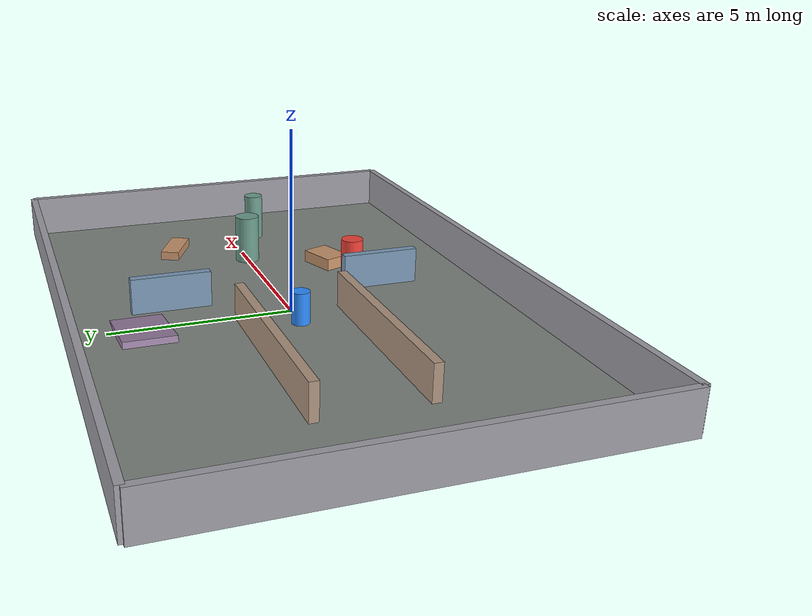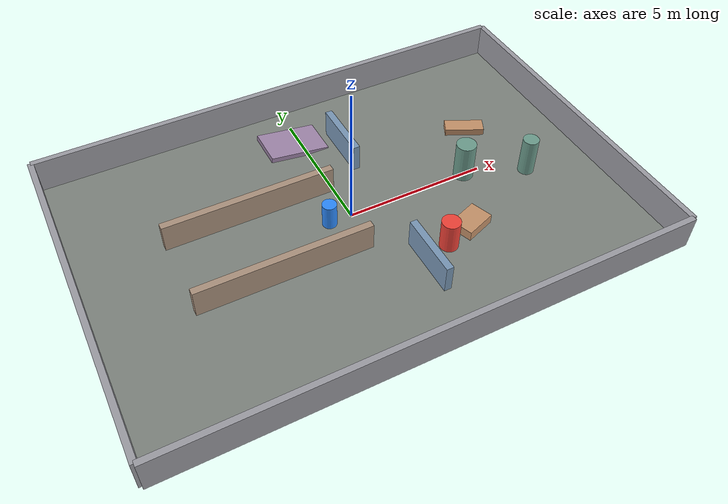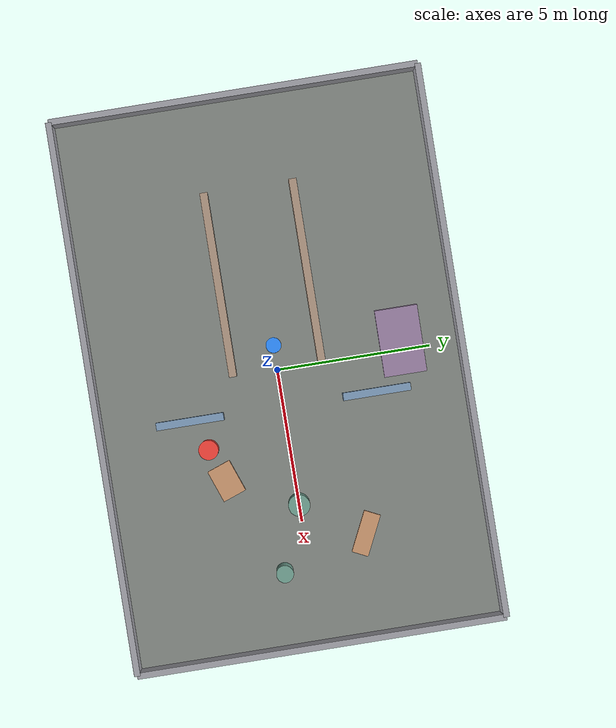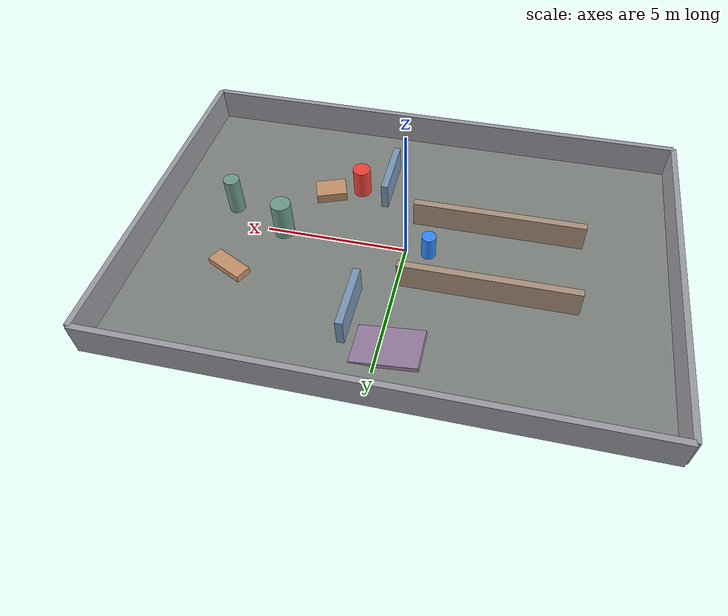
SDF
<?xml version="1.0"?>
<sdf version="1.7">
  <world name="default">
    <light name="sun" type="directional">
      <cast_shadows>true</cast_shadows>
      <pose>0 0 20 0 0 0</pose>
      <diffuse>0.85 0.85 0.85 1</diffuse>
      <specular>0.2 0.2 0.2 1</specular>
      <attenuation>
        <range>100</range>
        <constant>1</constant>
        <linear>0</linear>
        <quadratic>0</quadratic>
      </attenuation>
      <direction>-0.3 0.2 -0.9</direction>
    </light>

    <physics name="default_physics" default="0" type="ode">
      <max_step_size>0.001</max_step_size>
      <real_time_factor>1</real_time_factor>
      <real_time_update_rate>1000</real_time_update_rate>
    </physics>

    <scene>
      <ambient>0.45 0.45 0.45 1</ambient>
      <background>0.72 0.74 0.76 1</background>
      <shadows>true</shadows>
    </scene>

    <gui fullscreen="0">
      <camera name="user_camera">
        <pose>0 -15 11 0 0.62 1.5708</pose>
        <view_controller>orbit</view_controller>
        <projection_type>perspective</projection_type>
      </camera>
    </gui>

    <gravity>0 0 -9.81</gravity>
    <magnetic_field>0 0 0</magnetic_field>
    <atmosphere type="adiabatic"/>

    <model name="nav_test_floor">
      <static>true</static>
      <link name="link">
        <collision name="collision">
          <geometry>
            <box>
              <size>18 12 0.04</size>
            </box>
          </geometry>
          <surface>
            <friction>
              <ode>
                <mu>100</mu>
                <mu2>50</mu2>
              </ode>
            </friction>
          </surface>
        </collision>
        <visual name="visual">
          <geometry>
            <box>
              <size>18 12 0.04</size>
            </box>
          </geometry>
          <material>
            <ambient>0.42 0.43 0.42 1</ambient>
            <diffuse>0.50 0.52 0.50 1</diffuse>
          </material>
        </visual>
      </link>
      <pose>0 0 -0.02 0 0 0</pose>
    </model>

    <model name="wall_north">
      <static>true</static>
      <link name="link">
        <collision name="collision"><geometry><box><size>18 0.2 1.2</size></box></geometry></collision>
        <visual name="visual"><geometry><box><size>18 0.2 1.2</size></box></geometry><material><ambient>0.48 0.48 0.50 1</ambient><diffuse>0.62 0.62 0.65 1</diffuse></material></visual>
      </link>
      <pose>0 6 0.6 0 0 0</pose>
    </model>

    <model name="wall_south">
      <static>true</static>
      <link name="link">
        <collision name="collision"><geometry><box><size>18 0.2 1.2</size></box></geometry></collision>
        <visual name="visual"><geometry><box><size>18 0.2 1.2</size></box></geometry><material><ambient>0.48 0.48 0.50 1</ambient><diffuse>0.62 0.62 0.65 1</diffuse></material></visual>
      </link>
      <pose>0 -6 0.6 0 0 0</pose>
    </model>

    <model name="wall_west">
      <static>true</static>
      <link name="link">
        <collision name="collision"><geometry><box><size>0.2 12 1.2</size></box></geometry></collision>
        <visual name="visual"><geometry><box><size>0.2 12 1.2</size></box></geometry><material><ambient>0.48 0.48 0.50 1</ambient><diffuse>0.62 0.62 0.65 1</diffuse></material></visual>
      </link>
      <pose>-9 0 0.6 0 0 0</pose>
    </model>

    <model name="wall_east">
      <static>true</static>
      <link name="link">
        <collision name="collision"><geometry><box><size>0.2 12 1.2</size></box></geometry></collision>
        <visual name="visual"><geometry><box><size>0.2 12 1.2</size></box></geometry><material><ambient>0.48 0.48 0.50 1</ambient><diffuse>0.62 0.62 0.65 1</diffuse></material></visual>
      </link>
      <pose>9 0 0.6 0 0 0</pose>
    </model>

    <model name="corridor_wall_left">
      <static>true</static>
      <link name="link">
        <collision name="collision"><geometry><box><size>6.0 0.25 1.0</size></box></geometry></collision>
        <visual name="visual"><geometry><box><size>6.0 0.25 1.0</size></box></geometry><material><ambient>0.50 0.44 0.38 1</ambient><diffuse>0.68 0.58 0.50 1</diffuse></material></visual>
      </link>
      <pose>-3.0 -1.45 0.5 0 0 0</pose>
    </model>

    <model name="corridor_wall_right">
      <static>true</static>
      <link name="link">
        <collision name="collision"><geometry><box><size>6.0 0.25 1.0</size></box></geometry></collision>
        <visual name="visual"><geometry><box><size>6.0 0.25 1.0</size></box></geometry><material><ambient>0.50 0.44 0.38 1</ambient><diffuse>0.68 0.58 0.50 1</diffuse></material></visual>
      </link>
      <pose>-3.0 1.45 0.5 0 0 0</pose>
    </model>

    <model name="narrow_gate_top">
      <static>true</static>
      <link name="link">
        <collision name="collision"><geometry><box><size>0.25 2.2 1.0</size></box></geometry></collision>
        <visual name="visual"><geometry><box><size>0.25 2.2 1.0</size></box></geometry><material><ambient>0.38 0.46 0.55 1</ambient><diffuse>0.48 0.60 0.72 1</diffuse></material></visual>
      </link>
      <pose>1.2 3.05 0.5 0 0 0</pose>
    </model>

    <model name="narrow_gate_bottom">
      <static>true</static>
      <link name="link">
        <collision name="collision"><geometry><box><size>0.25 2.2 1.0</size></box></geometry></collision>
        <visual name="visual"><geometry><box><size>0.25 2.2 1.0</size></box></geometry><material><ambient>0.38 0.46 0.55 1</ambient><diffuse>0.48 0.60 0.72 1</diffuse></material></visual>
      </link>
      <pose>1.2 -3.05 0.5 0 0 0</pose>
    </model>

    <model name="low_obstacle_1">
      <static>true</static>
      <link name="link">
        <collision name="collision"><geometry><box><size>1.1 0.8 0.35</size></box></geometry></collision>
        <visual name="visual"><geometry><box><size>1.1 0.8 0.35</size></box></geometry><material><ambient>0.56 0.43 0.32 1</ambient><diffuse>0.78 0.58 0.42 1</diffuse></material></visual>
      </link>
      <pose>3.3 -2.2 0.175 0 0 0.35</pose>
    </model>

    <model name="low_obstacle_2">
      <static>true</static>
      <link name="link">
        <collision name="collision"><geometry><box><size>1.4 0.55 0.25</size></box></geometry></collision>
        <visual name="visual"><geometry><box><size>1.4 0.55 0.25</size></box></geometry><material><ambient>0.56 0.43 0.32 1</ambient><diffuse>0.78 0.58 0.42 1</diffuse></material></visual>
      </link>
      <pose>5.7 2.0 0.125 0 0 -0.45</pose>
    </model>

    <model name="column_1">
      <static>true</static>
      <link name="link">
        <collision name="collision"><geometry><cylinder><radius>0.35</radius><length>1.4</length></cylinder></geometry></collision>
        <visual name="visual"><geometry><cylinder><radius>0.35</radius><length>1.4</length></cylinder></geometry><material><ambient>0.34 0.45 0.42 1</ambient><diffuse>0.43 0.62 0.56 1</diffuse></material></visual>
      </link>
      <pose>4.4 0.0 0.7 0 0 0</pose>
    </model>

    <model name="column_2">
      <static>true</static>
      <link name="link">
        <collision name="collision"><geometry><cylinder><radius>0.28</radius><length>1.4</length></cylinder></geometry></collision>
        <visual name="visual"><geometry><cylinder><radius>0.28</radius><length>1.4</length></cylinder></geometry><material><ambient>0.34 0.45 0.42 1</ambient><diffuse>0.43 0.62 0.56 1</diffuse></material></visual>
      </link>
      <pose>6.5 -0.8 0.7 0 0 0</pose>
    </model>

    <model name="ramp">
      <static>true</static>
      <link name="link">
        <collision name="collision"><geometry><box><size>2.2 1.4 0.18</size></box></geometry></collision>
        <visual name="visual"><geometry><box><size>2.2 1.4 0.18</size></box></geometry><material><ambient>0.45 0.39 0.47 1</ambient><diffuse>0.62 0.52 0.66 1</diffuse></material></visual>
      </link>
      <pose>-0.3 4.1 0.11 0 0.14 0</pose>
    </model>

    <model name="moving_obstacle">
      <static>false</static>
      <pose>2.2 -2.6 0.55 0 0 1.5708</pose>
      <link name="link">
        <gravity>false</gravity>
        <kinematic>true</kinematic>
        <collision name="collision">
          <geometry>
            <cylinder>
              <radius>0.32</radius>
              <length>1.1</length>
            </cylinder>
          </geometry>
          <surface>
            <friction>
              <ode>
                <mu>10</mu>
                <mu2>10</mu2>
              </ode>
            </friction>
          </surface>
        </collision>
        <visual name="visual">
          <geometry>
            <cylinder>
              <radius>0.32</radius>
              <length>1.1</length>
            </cylinder>
          </geometry>
          <material>
            <ambient>0.82 0.18 0.18 1</ambient>
            <diffuse>0.95 0.26 0.22 1</diffuse>
            <specular>0.2 0.08 0.06 1</specular>
          </material>
        </visual>
      </link>
      <plugin name="dynamic_obstacle_plugin" filename="libdynamic_obstacle_plugin.so">
        <robot_model>mobile_robot</robot_model>
        <start_x>2.2</start_x>
        <start_y>-2.6</start_y>
        <end_x>2.2</end_x>
        <end_y>2.6</end_y>
        <height>0.55</height>
        <speed>0.35</speed>
        <pause_time>0.8</pause_time>
        <yield_radius>1.20</yield_radius>
        <yield_resume_radius>1.55</yield_resume_radius>
      </plugin>
    </model>

    <model name="fast_moving_obstacle">
      <static>false</static>
      <pose>-0.8 0.0 0.45 0 0 0</pose>
      <link name="link">
        <gravity>false</gravity>
        <kinematic>true</kinematic>
        <collision name="collision">
          <geometry>
            <cylinder>
              <radius>0.25</radius>
              <length>0.9</length>
            </cylinder>
          </geometry>
          <surface>
            <friction>
              <ode>
                <mu>10</mu>
                <mu2>10</mu2>
              </ode>
            </friction>
          </surface>
        </collision>
        <visual name="visual">
          <geometry>
            <cylinder>
              <radius>0.25</radius>
              <length>0.9</length>
            </cylinder>
          </geometry>
          <material>
            <ambient>0.10 0.42 0.88 1</ambient>
            <diffuse>0.18 0.55 1.00 1</diffuse>
            <specular>0.08 0.14 0.22 1</specular>
          </material>
        </visual>
      </link>
      <plugin name="fast_dynamic_obstacle_plugin" filename="libdynamic_obstacle_plugin.so">
        <robot_model>mobile_robot</robot_model>
        <start_x>-0.8</start_x>
        <start_y>0.0</start_y>
        <end_x>3.6</end_x>
        <end_y>0.0</end_y>
        <height>0.45</height>
        <speed>0.85</speed>
        <pause_time>0.3</pause_time>
        <yield_radius>1.60</yield_radius>
        <yield_resume_radius>2.00</yield_resume_radius>
      </plugin>
    </model>

    <wind/>
  </world>
</sdf>
